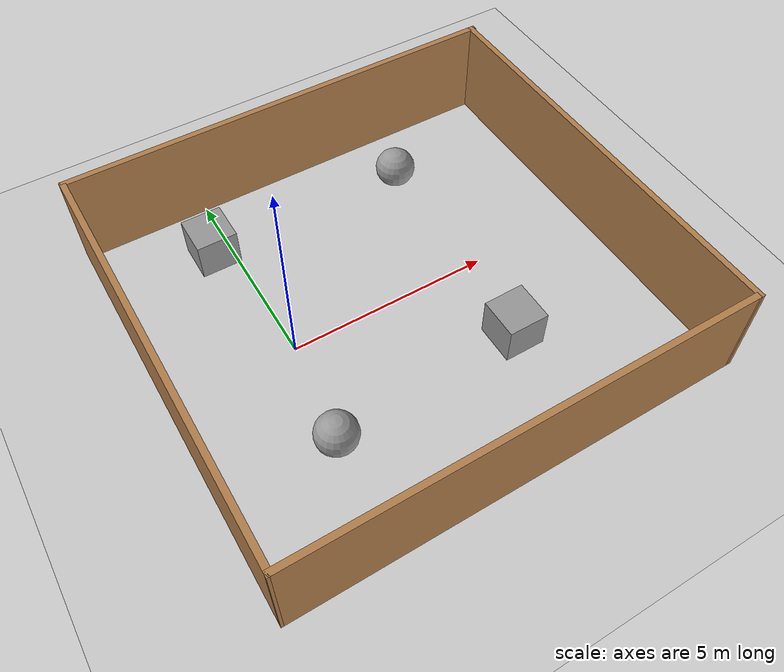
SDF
<sdf version="1.7">
 <world name="default">
  <light name="sun" type="directional">
   <pose>0 0 10 0 -0 0</pose>
   <diffuse>0.8 0.8 0.8 1</diffuse>
   <specular>0.2 0.2 0.2 1</specular>
   <attenuation>
    <range>1000</range>
    <constant>0.9</constant>
    <linear>0.01</linear>
    <quadratic>0.001</quadratic>
   </attenuation>
   <direction>-0.5 0.1 -0.9</direction>
   <spot><inner_angle>0</inner_angle><outer_angle>0</outer_angle><falloff>0</falloff></spot>
  </light>
  <model name="ground_plane">
   <static>1</static>
   <link name="link">
    <collision name="collision">
     <geometry><plane><normal>0 0 1</normal><size>100 100</size></plane></geometry>
     <surface>
      <contact><collide_bitmask>65535</collide_bitmask></contact>
      <friction><ode><mu>100</mu><mu2>50</mu2></ode></friction>
     </surface>
    </collision>
    <visual name="visual">
     <cast_shadows>0</cast_shadows>
     <geometry><plane><normal>0 0 1</normal><size>100 100</size></plane></geometry>
     <material>
      <script><uri>file://media/materials/scripts/gazebo.material</uri><name>Gazebo/Grey</name></script>
     </material>
    </visual>
   </link>
  </model>
  <gravity>0 0 -9.8</gravity>
  <magnetic_field>6e-06 2.3e-05 -4.2e-05</magnetic_field>
  <atmosphere type="adiabatic"/>
  <physics type="ode">
   <max_step_size>0.001</max_step_size>
   <real_time_factor>1</real_time_factor>
   <real_time_update_rate>1000</real_time_update_rate>
  </physics>
  <scene><ambient>0.4 0.4 0.4 1</ambient><background>0.7 0.7 0.7 1</background><shadows>1</shadows></scene>
  <spherical_coordinates>
   <surface_model>EARTH_WGS84</surface_model>
   <latitude_deg>0</latitude_deg>
   <longitude_deg>0</longitude_deg>
   <elevation>0</elevation>
   <heading_deg>0</heading_deg>
  </spherical_coordinates>
  <model name="basic">
   <pose>2.53175 -0.111772 0 0 -0 0</pose>
   <link name="Wall_25">
    <collision name="Wall_25_Collision">
     <geometry><box><size>10.5201 0.15 2.5</size></box></geometry>
     <pose>0 0 1.25 0 -0 0</pose>
    </collision>
    <visual name="Wall_25_Visual">
     <pose>0 0 1.25 0 -0 0</pose>
     <geometry><box><size>10.5201 0.15 2.5</size></box></geometry>
     <material>
      <script><uri>file://media/materials/scripts/gazebo.material</uri><name>Gazebo/Wood</name></script>
      <ambient>1 1 1 1</ambient>
     </material>
     <meta><layer>0</layer></meta>
    </visual>
    <pose>5.55 0 0 0 -0 -1.5649</pose>
   </link>
   <link name="Wall_26">
    <collision name="Wall_26_Collision">
     <geometry><box><size>11.25 0.15 2.5</size></box></geometry>
     <pose>0 0 1.25 0 -0 0</pose>
    </collision>
    <visual name="Wall_26_Visual">
     <pose>0 0 1.25 0 -0 0</pose>
     <geometry><box><size>11.25 0.15 2.5</size></box></geometry>
     <material>
      <script><uri>file://media/materials/scripts/gazebo.material</uri><name>Gazebo/Wood</name></script>
      <ambient>1 1 1 1</ambient>
     </material>
     <meta><layer>0</layer></meta>
    </visual>
    <pose>0.03059 -5.18502 0 0 -0 3.14159</pose>
   </link>
   <link name="Wall_27">
    <collision name="Wall_27_Collision">
     <geometry><box><size>10.5201 0.15 2.5</size></box></geometry>
     <pose>0 0 1.25 0 -0 0</pose>
    </collision>
    <visual name="Wall_27_Visual">
     <pose>0 0 1.25 0 -0 0</pose>
     <geometry><box><size>10.5201 0.15 2.5</size></box></geometry>
     <material>
      <script><uri>file://media/materials/scripts/gazebo.material</uri><name>Gazebo/Wood</name></script>
      <ambient>1 1 1 1</ambient>
     </material>
     <meta><layer>0</layer></meta>
    </visual>
    <pose>-5.55 0 0 0 -0 1.5767</pose>
   </link>
   <link name="Wall_30">
    <collision name="Wall_30_Collision">
     <geometry><box><size>11.25 0.15 2.5</size></box></geometry>
     <pose>0 0 1.25 0 -0 0</pose>
    </collision>
    <visual name="Wall_30_Visual">
     <pose>0 0 1.25 0 -0 0</pose>
     <geometry><box><size>11.25 0.15 2.5</size></box></geometry>
     <material>
      <script><uri>file://media/materials/scripts/gazebo.material</uri><name>Gazebo/Wood</name></script>
      <ambient>1 1 1 1</ambient>
     </material>
     <meta><layer>0</layer></meta>
    </visual>
    <pose>0 5.18502 0 0 -0 0</pose>
   </link>
   <static>1</static>
  </model>
  <model name="unit_box">
   <pose>-0.435681 3.5009 0.499995 -1e-05 0 0</pose>
   <link name="link">
    <inertial>
     <mass>1</mass>
     <inertia>
      <ixx>0.166667</ixx>
      <ixy>0</ixy>
      <ixz>0</ixz>
      <iyy>0.166667</iyy>
      <iyz>0</iyz>
      <izz>0.166667</izz>
     </inertia>
    </inertial>
    <collision name="collision"><geometry><box><size>1 1 1</size></box></geometry></collision>
    <visual name="visual">
     <geometry><box><size>1 1 1</size></box></geometry>
     <material>
      <script><name>Gazebo/Grey</name><uri>file://media/materials/scripts/gazebo.material</uri></script>
     </material>
    </visual>
   </link>
  </model>
  <model name="unit_sphere">
   <pose>4.70599 3.41914 0.5 0 -0 0</pose>
   <link name="link">
    <inertial>
     <mass>1</mass>
     <inertia><ixx>0.1</ixx><ixy>0</ixy><ixz>0</ixz><iyy>0.1</iyy><iyz>0</iyz><izz>0.1</izz></inertia>
    </inertial>
    <collision name="collision"><geometry><sphere><radius>0.5</radius></sphere></geometry></collision>
    <visual name="visual">
     <geometry><sphere><radius>0.5</radius></sphere></geometry>
     <material>
      <script><name>Gazebo/Grey</name><uri>file://media/materials/scripts/gazebo.material</uri></script>
     </material>
    </visual>
   </link>
  </model>
  <model name="unit_box_0">
   <pose>4.43231 -2.22932 0.499995 -1e-05 -0 0</pose>
   <link name="link">
    <inertial>
     <mass>1</mass>
     <inertia>
      <ixx>0.166667</ixx>
      <ixy>0</ixy>
      <ixz>0</ixz>
      <iyy>0.166667</iyy>
      <iyz>0</iyz>
      <izz>0.166667</izz>
     </inertia>
    </inertial>
    <collision name="collision"><geometry><box><size>1 1 1</size></box></geometry></collision>
    <visual name="visual">
     <geometry><box><size>1 1 1</size></box></geometry>
     <material>
      <script><name>Gazebo/Grey</name><uri>file://media/materials/scripts/gazebo.material</uri></script>
     </material>
    </visual>
   </link>
  </model>
  <model name="unit_sphere_0">
   <pose>-0.350022 -2.61613 0.5 0 -0 0</pose>
   <link name="link">
    <inertial>
     <mass>1</mass>
     <inertia><ixx>0.1</ixx><ixy>0</ixy><ixz>0</ixz><iyy>0.1</iyy><iyz>0</iyz><izz>0.1</izz></inertia>
    </inertial>
    <collision name="collision"><geometry><sphere><radius>0.5</radius></sphere></geometry></collision>
    <visual name="visual">
     <geometry><sphere><radius>0.5</radius></sphere></geometry>
     <material>
      <script><name>Gazebo/Grey</name><uri>file://media/materials/scripts/gazebo.material</uri></script>
     </material>
    </visual>
   </link>
  </model>
 </world>
</sdf>
